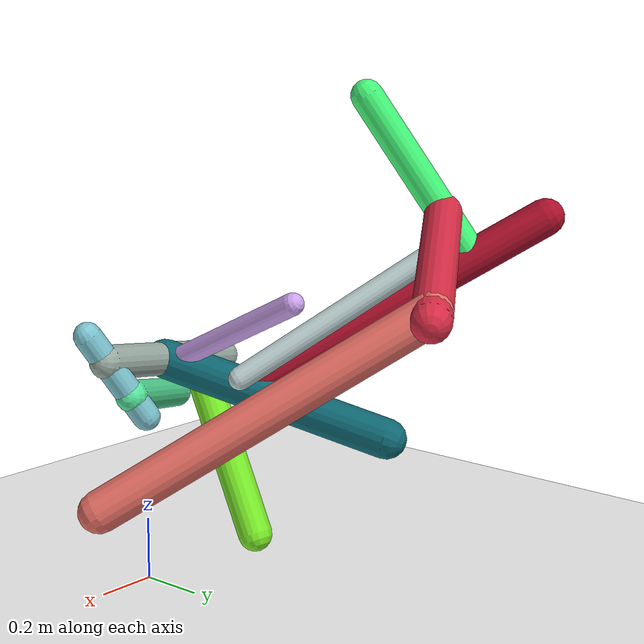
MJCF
<mujoco model="morphology">
  <option timestep="0.01"/>
  <default>
    <default class="/"/>
    <default class="0/"/>
    <default class="0/1/"/>
    <default class="0/2/"/>
    <default class="0/2/3/"/>
    <default class="0/2/3/4/"/>
    <default class="0/2/3/5/"/>
    <default class="0/2/3/5/6/"/>
    <default class="0/2/3/5/6/7/"/>
    <default class="0/2/3/5/6/7/8/"/>
    <default class="0/2/3/5/6/7/9/"/>
    <default class="0/2/10/"/>
  </default>
  <asset>
    <texture name="texplane" type="2d" builtin="checker" rgb1="0.10000000000000001 0.20000000000000001 0.29999999999999999" rgb2="0.20000000000000001 0.29999999999999999 0.40000000000000002" width="300" height="300"/>
    <material name="MatPlane" class="/" texture="texplane" texrepeat="20 20" specular="1" shininess="1" reflectance="0.5"/>
  </asset>
  <worldbody>
    <light name="//unnamed_light_0" class="/" directional="true" pos="0 0 1.5" dir="0 0 -1.3" cutoff="100" exponent="1" diffuse="1 1 1" specular="0.10000000000000001 0.10000000000000001 0.10000000000000001"/>
    <geom name="ground" class="/" type="plane" size="15 15 0.5" material="MatPlane" rgba="1 1 1 1"/>
    <site name="body" class="/" size="9.9999999999999995e-07 9.9999999999999995e-07 9.9999999999999995e-07" pos="0 0 0.53835833668708799"/>
    <body pos="0 0 0.53835833668708799" name="0/">
      <freejoint name="0/"/>
      <geom name="0/geom" class="0/" type="capsule" contype="1" conaffinity="1" condim="3" size="0.044893820030373711" rgba="0.49237056379214938 0.78061122791594606 0.82923019816317611 1" friction="0.59999999999999998 0.10000000000000001 0.10000000000000001" fromto="0 0 0 0.15255822682032694 -0.094535473026821304 0.27090761530862717"/>
      <site name="0/end0" class="0/" size="0.0050000000000000001" pos="0.15255822682032694 -0.094535473026821304 0.27090761530862717"/>
      <site name="0/attach1" class="0/" size="9.9999999999999995e-07 9.9999999999999995e-07 9.9999999999999995e-07" pos="0.039287598487354039 -0.024345273175362961 0.069765556661502776"/>
      <body pos="0.039287598487354039 -0.024345273175362961 0.069765556661502776" name="0/1/">
        <joint name="0/1/joint/" class="0/" type="hinge" axis="0 1 0" limited="true" range="-65.871574358844939 65.871574358844939"/>
        <geom name="0/1/geom" class="0/1/" type="capsule" contype="1" conaffinity="1" condim="3" size="0.051790947681311345" rgba="0.34077031017625592 0.91196193975445028 0.6242963519655137 1" friction="0.59999999999999998 0.10000000000000001 0.10000000000000001" fromto="0 0 0 -0.60099066228252018 -0.40735265869380788 -0.175695289861725"/>
        <site name="0/1/end1" class="0/1/" size="0.0050000000000000001" pos="-0.60099066228252018 -0.40735265869380788 -0.175695289861725"/>
      </body>
      <site name="0/attach2" class="0/" size="9.9999999999999995e-07 9.9999999999999995e-07 9.9999999999999995e-07" pos="0.10375513186549158 -0.064293749831114133 0.1842447695909333"/>
      <body pos="0.10375513186549158 -0.064293749831114133 0.1842447695909333" name="0/2/">
        <geom name="0/2/geom" class="0/2/" type="capsule" contype="1" conaffinity="1" condim="3" size="0.054524033385897709" rgba="0.60252530696239526 0.67631656658807682 0.63989682541760018 1" friction="0.59999999999999998 0.10000000000000001 0.10000000000000001" fromto="0 0 0 -0.59486376174156175 -0.074265761564610067 -0.095062530870097417"/>
        <site name="0/2/end2" class="0/2/" size="0.0050000000000000001" pos="-0.59486376174156175 -0.074265761564610067 -0.095062530870097417"/>
        <site name="0/2/attach3" class="0/2/" size="9.9999999999999995e-07 9.9999999999999995e-07 9.9999999999999995e-07" pos="-0.28859333581953972 -0.036029432696256199 -0.04611881687822203"/>
        <body pos="-0.28859333581953972 -0.036029432696256199 -0.04611881687822203" name="0/2/3/">
          <joint name="0/2/3/joint/" class="0/2/" type="hinge" axis="0.19874530694200124 -0.60335337959535529 -0.77231146715518384" limited="true" range="-54.958836033108341 54.958836033108341"/>
          <geom name="0/2/3/geom" class="0/2/3/" type="capsule" contype="1" conaffinity="1" condim="3" size="0.064549858638975666" rgba="0.056355291235210214 0.40942959376419408 0.45715406254878144 1" friction="0.59999999999999998 0.10000000000000001 0.10000000000000001" fromto="0 0 0 -0.28662077920993162 0.69225812134943165 -0.20203807673020413"/>
          <site name="0/2/3/end3" class="0/2/3/" size="0.0050000000000000001" pos="-0.28662077920993162 0.69225812134943165 -0.20203807673020413"/>
          <site name="0/2/3/attach4" class="0/2/3/" size="9.9999999999999995e-07 9.9999999999999995e-07 9.9999999999999995e-07" pos="-0.010026470882173856 0.02421633880066552 -0.0070676274728221312"/>
          <body pos="-0.010026470882173856 0.02421633880066552 -0.0070676274728221312" name="0/2/3/4/">
            <joint name="0/2/3/4/joint/" class="0/2/3/" type="hinge" axis="0 0.280165440483999 0.95995173105651865" limited="true" range="-52.071842533372205 52.071842533372205"/>
            <geom name="0/2/3/4/geom" class="0/2/3/4/" type="capsule" contype="1" conaffinity="1" condim="3" size="0.03620216779919716" rgba="0.81292691811016715 0.64843797842369366 0.94731693852851195 1" friction="0.59999999999999998 0.10000000000000001 0.10000000000000001" fromto="0 0 0 -0.02940914304284592 0.4926588543628081 0.2514406090821697"/>
            <site name="0/2/3/4/end4" class="0/2/3/4/" size="0.0050000000000000001" pos="-0.02940914304284592 0.4926588543628081 0.2514406090821697"/>
          </body>
          <site name="0/2/3/attach5" class="0/2/3/" size="9.9999999999999995e-07 9.9999999999999995e-07 9.9999999999999995e-07" pos="-0.10356485928857785 0.25013404515385151 -0.073002540308401517"/>
          <body pos="-0.10356485928857785 0.25013404515385151 -0.073002540308401517" name="0/2/3/5/">
            <joint name="0/2/3/5/joint/" class="0/2/3/" type="hinge" axis="-0.92928967962456532 -0.35455982074275777 0.10347958667358652" limited="true" range="-34.373635482368584 34.373635482368584"/>
            <geom name="0/2/3/5/geom" class="0/2/3/5/" type="capsule" contype="1" conaffinity="1" condim="3" size="0.060982017718497893" rgba="0.68211406669075447 0.061795614064734217 0.16972065769508771 1" friction="0.59999999999999998 0.10000000000000001 0.10000000000000001" fromto="0 0 0 -0.65468337779333907 0.70098987639908206 0.54571901301965342"/>
            <site name="0/2/3/5/end5" class="0/2/3/5/" size="0.0050000000000000001" pos="-0.65468337779333907 0.70098987639908206 0.54571901301965342"/>
            <site name="0/2/3/5/attach6" class="0/2/3/5/" size="9.9999999999999995e-07 9.9999999999999995e-07 9.9999999999999995e-07" pos="-0.49903063562080302 0.53432763905242564 0.41597284301835485"/>
            <body pos="-0.49903063562080302 0.53432763905242564 0.41597284301835485" name="0/2/3/5/6/">
              <joint name="0/2/3/5/6/joint/" class="0/2/3/5/" type="hinge" axis="0 -0.61429451013182867 0.78907683708362419" limited="true" range="-38.827386985235648 38.827386985235648"/>
              <geom name="0/2/3/5/6/geom" class="0/2/3/5/6/" type="capsule" contype="1" conaffinity="1" condim="3" size="0.051812729280927186" rgba="0.26968374991976196 0.97654990641966855 0.47787465128397166 1" friction="0.59999999999999998 0.10000000000000001 0.10000000000000001" fromto="0 0 0 0.19554800452691001 -0.28005206359890089 0.50917485705542331"/>
              <site name="0/2/3/5/6/end6" class="0/2/3/5/6/" size="0.0050000000000000001" pos="0.19554800452691001 -0.28005206359890089 0.50917485705542331"/>
              <site name="0/2/3/5/6/attach7" class="0/2/3/5/6/" size="9.9999999999999995e-07 9.9999999999999995e-07 9.9999999999999995e-07" pos="0.054980268665281225 -0.078739426332602211 0.14315958123040273"/>
              <body pos="0.054980268665281225 -0.078739426332602211 0.14315958123040273" name="0/2/3/5/6/7/">
                <joint name="0/2/3/5/6/7/joint/" class="0/2/3/5/6/" type="hinge" axis="5.5511151231257827e-17 0.87621162704438471 0.48192653447619183" limited="true" range="-67.512910830282493 67.512910830282493"/>
                <geom name="0/2/3/5/6/7/geom" class="0/2/3/5/6/7/" type="capsule" contype="1" conaffinity="1" condim="3" size="0.060752697525068455" rgba="0.85578736434897207 0.17645877016700062 0.27660756591298541 1" friction="0.59999999999999998 0.10000000000000001 0.10000000000000001" fromto="0 0 0 0.62067679579520618 0.41225409100239241 -0.19321872546881325"/>
                <site name="0/2/3/5/6/7/end7" class="0/2/3/5/6/7/" size="0.0050000000000000001" pos="0.62067679579520618 0.41225409100239241 -0.19321872546881325"/>
                <site name="0/2/3/5/6/7/attach8" class="0/2/3/5/6/7/" size="9.9999999999999995e-07 9.9999999999999995e-07 9.9999999999999995e-07" pos="0.57704908850422676 0.38327652822961622 -0.17963727687109429"/>
                <body pos="0.57704908850422676 0.38327652822961622 -0.17963727687109429" name="0/2/3/5/6/7/8/">
                  <joint name="0/2/3/5/6/7/8/joint/" class="0/2/3/5/6/7/" type="hinge" axis="-2.7755575615628914e-17 0.42438817341010227 0.90548035774920987" limited="true" range="-43.57965495178717 43.57965495178717"/>
                  <geom name="0/2/3/5/6/7/8/geom" class="0/2/3/5/6/7/8/" type="capsule" contype="1" conaffinity="1" condim="3" size="0.062517921636572299" rgba="0.9136129602662697 0.44224615117180577 0.39919234758796074 1" friction="0.59999999999999998 0.10000000000000001 0.10000000000000001" fromto="0 0 0 0.64125027522545786 -0.67657688602501986 -0.56401929010229168"/>
                  <site name="0/2/3/5/6/7/8/end8" class="0/2/3/5/6/7/8/" size="0.0050000000000000001" pos="0.64125027522545786 -0.67657688602501986 -0.56401929010229168"/>
                </body>
                <site name="0/2/3/5/6/7/attach9" class="0/2/3/5/6/7/" size="9.9999999999999995e-07 9.9999999999999995e-07 9.9999999999999995e-07" pos="0.23134713374663818 0.15366097617124072 -0.072019122716064241"/>
                <body pos="0.23134713374663818 0.15366097617124072 -0.072019122716064241" name="0/2/3/5/6/7/9/">
                  <joint name="0/2/3/5/6/7/9/joint/" class="0/2/3/5/6/7/" type="hinge" axis="-0.59146903874981605 0.73011390347478011 -0.34219594409225274" limited="true" range="-43.08095094159367 43.08095094159367"/>
                  <geom name="0/2/3/5/6/7/9/geom" class="0/2/3/5/6/7/9/" type="capsule" contype="1" conaffinity="1" condim="3" size="0.036620632271708947" rgba="0.75658706898193218 0.83631047816885618 0.8417353292516544 1" friction="0.59999999999999998 0.10000000000000001 0.10000000000000001" fromto="0 0 0 0.4248522458219921 -0.42532014985202005 -0.38770538112552128"/>
                  <site name="0/2/3/5/6/7/9/end9" class="0/2/3/5/6/7/9/" size="0.0050000000000000001" pos="0.4248522458219921 -0.42532014985202005 -0.38770538112552128"/>
                </body>
              </body>
            </body>
          </body>
        </body>
        <site name="0/2/attach10" class="0/2/" size="9.9999999999999995e-07 9.9999999999999995e-07 9.9999999999999995e-07" pos="-0.45761541130157973 -0.057130992354479514 -0.073129482683781638"/>
        <body pos="-0.45761541130157973 -0.057130992354479514 -0.073129482683781638" name="0/2/10/">
          <geom name="0/2/10/geom" class="0/2/10/" type="capsule" contype="1" conaffinity="1" condim="3" size="0.056556294836911353" rgba="0.48041477137477706 0.92714276689048525 0.15796839971030374 1" friction="0.59999999999999998 0.10000000000000001 0.10000000000000001" fromto="0 0 0 0.034009430822331765 0.29132793571881144 -0.54947361744567602"/>
          <site name="0/2/10/end10" class="0/2/10/" size="0.0050000000000000001" pos="0.034009430822331765 0.29132793571881144 -0.54947361744567602"/>
        </body>
      </body>
      <camera name="0/iso" class="0/" mode="trackcom" pos="-2.2999999999999998 -2.2999999999999998 1" xyaxes="0.45000000000000001 -0.45000000000000001 0 0.29999999999999999 0.14999999999999999 0.93999999999999995"/>
    </body>
  </worldbody>
  <actuator>
    <motor name="0/1/motor" class="0/1/" ctrllimited="true" ctrlrange="-1 1" gear="65" joint="0/1/joint/"/>
    <motor name="0/2/3/motor" class="0/2/3/" ctrllimited="true" ctrlrange="-1 1" gear="67" joint="0/2/3/joint/"/>
    <motor name="0/2/3/4/motor" class="0/2/3/4/" ctrllimited="true" ctrlrange="-1 1" gear="67" joint="0/2/3/4/joint/"/>
    <motor name="0/2/3/5/motor" class="0/2/3/5/" ctrllimited="true" ctrlrange="-1 1" gear="88" joint="0/2/3/5/joint/"/>
    <motor name="0/2/3/5/6/motor" class="0/2/3/5/6/" ctrllimited="true" ctrlrange="-1 1" gear="90" joint="0/2/3/5/6/joint/"/>
    <motor name="0/2/3/5/6/7/motor" class="0/2/3/5/6/7/" ctrllimited="true" ctrlrange="-1 1" gear="91" joint="0/2/3/5/6/7/joint/"/>
    <motor name="0/2/3/5/6/7/8/motor" class="0/2/3/5/6/7/8/" ctrllimited="true" ctrlrange="-1 1" gear="96" joint="0/2/3/5/6/7/8/joint/"/>
    <motor name="0/2/3/5/6/7/9/motor" class="0/2/3/5/6/7/9/" ctrllimited="true" ctrlrange="-1 1" gear="75" joint="0/2/3/5/6/7/9/joint/"/>
  </actuator>
  <sensor>
    <subtreelinvel name="velocity" body="0/"/>
  </sensor>
</mujoco>
